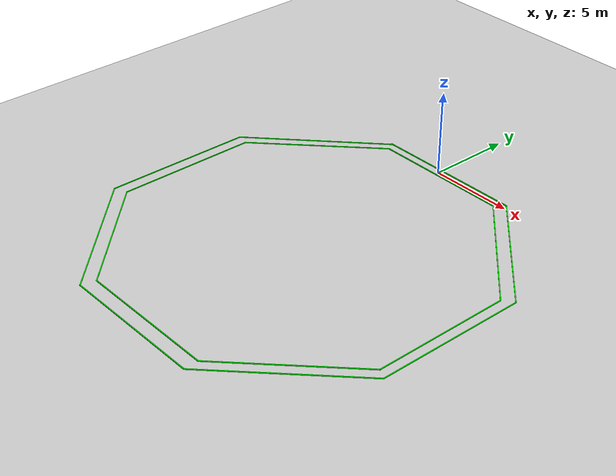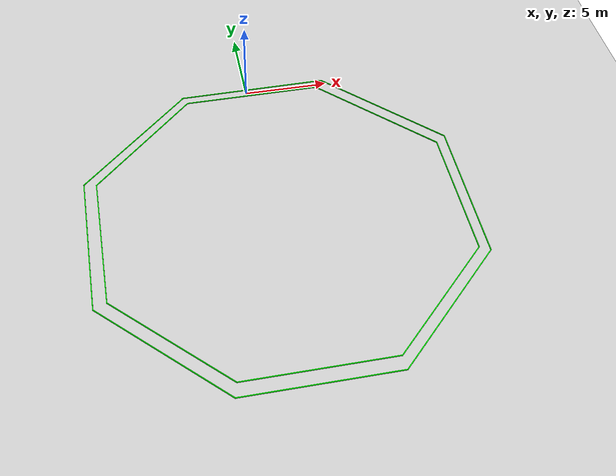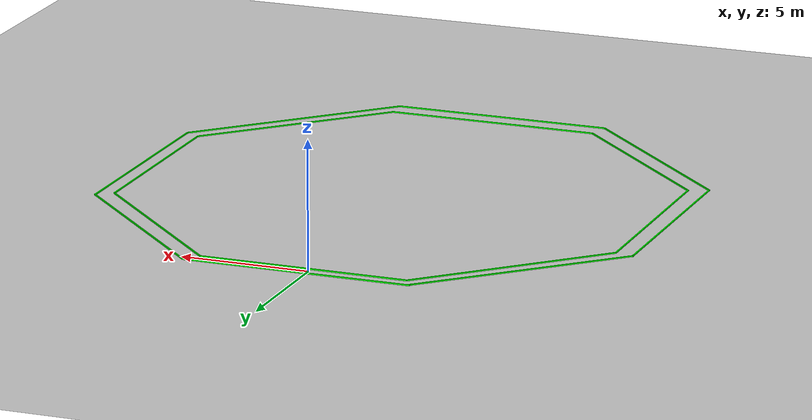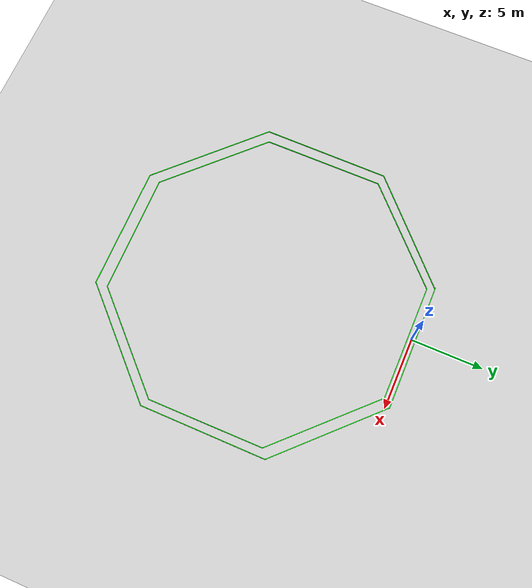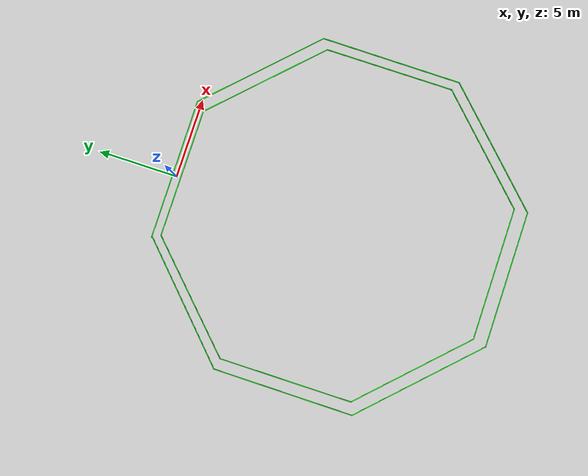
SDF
<sdf version="1.6">
 <world name="default">
  <model name="ground_plane">
   <static>1</static>
   <link name="link">
    <collision name="collision">
     <geometry><plane><normal>0 0 1</normal><size>100 100</size></plane></geometry>
     <surface><friction><ode><mu>100</mu><mu2>50</mu2></ode></friction></surface>
    </collision>
    <visual name="visual">
     <cast_shadows>0</cast_shadows>
     <geometry><plane><normal>0 0 1</normal><size>100 100</size></plane></geometry>
     <material>
      <script><uri>file://media/materials/scripts/gazebo.material</uri><name>Gazebo/Grey</name></script>
     </material>
    </visual>
   </link>
  </model>
  <light name="sun" type="directional">
   <pose>0 0 10 0 -0 0</pose>
   <diffuse>0.8 0.8 0.8 1</diffuse>
   <specular>0.2 0.2 0.2 1</specular>
   <attenuation>
    <range>1000</range>
    <constant>0.9</constant>
    <linear>0.01</linear>
    <quadratic>0.001</quadratic>
   </attenuation>
   <direction>-0.5 0.1 -0.9</direction>
  </light>
  <gravity>0 0 -9.8</gravity>
  <magnetic_field>6e-06 2.3e-05 -4.2e-05</magnetic_field>
  <atmosphere type="adiabatic"/>
  <physics name="default_physics" default="0" type="ode">
   <max_step_size>0.001</max_step_size>
   <real_time_factor>1</real_time_factor>
   <real_time_update_rate>1000</real_time_update_rate>
  </physics>
  <scene><ambient>0.4 0.4 0.4 1</ambient><background>0.7 0.7 0.7 1</background><shadows>1</shadows></scene>
  <spherical_coordinates>
   <surface_model>EARTH_WGS84</surface_model>
   <latitude_deg>0</latitude_deg>
   <longitude_deg>0</longitude_deg>
   <elevation>0</elevation>
   <heading_deg>0</heading_deg>
  </spherical_coordinates>
  <model name="racetrack8">
   <pose>0.303999 -10.4551 0 0 -0 0</pose>
   <link name="Wall_0">
    <collision name="Wall_0_Collision">
     <geometry><box><size>8.15015 0.05 0.05</size></box></geometry>
     <pose>0 0 0.025 0 -0 0</pose>
    </collision>
    <visual name="Wall_0_Visual">
     <pose>0 0 0.025 0 -0 0</pose>
     <geometry><box><size>8.15015 0.05 0.05</size></box></geometry>
     <material>
      <script><uri>file://media/materials/scripts/gazebo.material</uri><name>Gazebo/Grey</name></script>
      <ambient>0 1 0 1</ambient>
     </material>
     <meta><layer>0</layer></meta>
    </visual>
    <pose>0.017001 10.1958 0 0 -0 0</pose>
   </link>
   <link name="Wall_1">
    <collision name="Wall_1_Collision">
     <geometry><box><size>8.65024 0.05 0.05</size></box></geometry>
     <pose>0 0 0.025 0 -0 0</pose>
    </collision>
    <visual name="Wall_1_Visual">
     <pose>0 0 0.025 0 -0 0</pose>
     <geometry><box><size>8.65024 0.05 0.05</size></box></geometry>
     <material>
      <script><uri>file://media/materials/scripts/gazebo.material</uri><name>Gazebo/Grey</name></script>
      <ambient>0 1 0 1</ambient>
     </material>
     <meta><layer>0</layer></meta>
    </visual>
    <pose>7.1075 7.15532 0 0 0 -0.785398</pose>
   </link>
   <link name="Wall_10">
    <collision name="Wall_10_Collision">
     <geometry><box><size>8.7751 0.05 0.05</size></box></geometry>
     <pose>0 0 0.025 0 -0 0</pose>
    </collision>
    <visual name="Wall_10_Visual">
     <pose>0 0 0.025 0 -0 0</pose>
     <geometry><box><size>8.7751 0.05 0.05</size></box></geometry>
     <material>
      <script><uri>file://media/materials/scripts/gazebo.material</uri><name>Gazebo/Grey</name></script>
      <ambient>0 1 0 1</ambient>
     </material>
     <meta><layer>0</layer></meta>
    </visual>
    <pose>7.65868 7.63006 0 0 0 -0.782628</pose>
   </link>
   <link name="Wall_11">
    <collision name="Wall_11_Collision">
     <geometry><box><size>8.90005 0.05 0.05</size></box></geometry>
     <pose>0 0 0.025 0 -0 0</pose>
    </collision>
    <visual name="Wall_11_Visual">
     <pose>0 0 0.025 0 -0 0</pose>
     <geometry><box><size>8.90005 0.05 0.05</size></box></geometry>
     <material>
      <script><uri>file://media/materials/scripts/gazebo.material</uri><name>Gazebo/Grey</name></script>
      <ambient>0 1 0 1</ambient>
     </material>
     <meta><layer>0</layer></meta>
    </visual>
    <pose>10.7345 0.128824 0 0 0 -1.57475</pose>
   </link>
   <link name="Wall_12">
    <collision name="Wall_12_Collision">
     <geometry><box><size>9.14985 0.05 0.05</size></box></geometry>
     <pose>0 0 0.025 0 -0 0</pose>
    </collision>
    <visual name="Wall_12_Visual">
     <pose>0 0 0.025 0 -0 0</pose>
     <geometry><box><size>9.14985 0.05 0.05</size></box></geometry>
     <material>
      <script><uri>file://media/materials/scripts/gazebo.material</uri><name>Gazebo/Grey</name></script>
      <ambient>0 1 0 1</ambient>
     </material>
     <meta><layer>0</layer></meta>
    </visual>
    <pose>7.5 -7.51368 0 0 0 -2.35612</pose>
   </link>
   <link name="Wall_13">
    <collision name="Wall_13_Collision">
     <geometry><box><size>8.65 0.05 0.05</size></box></geometry>
     <pose>0 0 0.025 0 -0 0</pose>
    </collision>
    <visual name="Wall_13_Visual">
     <pose>0 0 0.025 0 -0 0</pose>
     <geometry><box><size>8.65 0.05 0.05</size></box></geometry>
     <material>
      <script><uri>file://media/materials/scripts/gazebo.material</uri><name>Gazebo/Grey</name></script>
      <ambient>0 1 0 1</ambient>
     </material>
     <meta><layer>0</layer></meta>
    </visual>
    <pose>-0.016999 -10.7312 0 0 -0 3.14159</pose>
   </link>
   <link name="Wall_14">
    <collision name="Wall_14_Collision">
     <geometry><box><size>9.15046 0.05 0.05</size></box></geometry>
     <pose>0 0 0.025 0 -0 0</pose>
    </collision>
    <visual name="Wall_14_Visual">
     <pose>0 0 0.025 0 -0 0</pose>
     <geometry><box><size>9.15046 0.05 0.05</size></box></geometry>
     <material>
      <script><uri>file://media/materials/scripts/gazebo.material</uri><name>Gazebo/Grey</name></script>
      <ambient>0 1 0 1</ambient>
     </material>
     <meta><layer>0</layer></meta>
    </visual>
    <pose>-7.5345 -7.51368 0 0 -0 2.35619</pose>
   </link>
   <link name="Wall_15">
    <collision name="Wall_15_Collision">
     <geometry><box><size>8.86507 0.05 0.05</size></box></geometry>
     <pose>0 0 0.025 0 -0 0</pose>
    </collision>
    <visual name="Wall_15_Visual">
     <pose>0 0 0.025 0 -0 0</pose>
     <geometry><box><size>8.86507 0.05 0.05</size></box></geometry>
     <material>
      <script><uri>file://media/materials/scripts/gazebo.material</uri><name>Gazebo/Grey</name></script>
      <ambient>0 1 0 1</ambient>
     </material>
     <meta><layer>0</layer></meta>
    </visual>
    <pose>-10.7345 0.111324 0 0 -0 1.56683</pose>
   </link>
   <link name="Wall_16">
    <collision name="Wall_16_Collision">
     <geometry><box><size>8.95101 0.05 0.05</size></box></geometry>
     <pose>0 0 0.025 0 -0 0</pose>
    </collision>
    <visual name="Wall_16_Visual">
     <pose>0 0 0.025 0 -0 0</pose>
     <geometry><box><size>8.95101 0.05 0.05</size></box></geometry>
     <material>
      <script><uri>file://media/materials/scripts/gazebo.material</uri><name>Gazebo/Grey</name></script>
      <ambient>0 1 0 1</ambient>
     </material>
     <meta><layer>0</layer></meta>
    </visual>
    <pose>-7.50082 7.59506 0 0 -0 0.763161</pose>
   </link>
   <link name="Wall_2">
    <collision name="Wall_2_Collision">
     <geometry><box><size>8.15031 0.05 0.05</size></box></geometry>
     <pose>0 0 0.025 0 -0 0</pose>
    </collision>
    <visual name="Wall_2_Visual">
     <pose>0 0 0.025 0 -0 0</pose>
     <geometry><box><size>8.15031 0.05 0.05</size></box></geometry>
     <material>
      <script><uri>file://media/materials/scripts/gazebo.material</uri><name>Gazebo/Grey</name></script>
      <ambient>0 1 0 1</ambient>
     </material>
     <meta><layer>0</layer></meta>
    </visual>
    <pose>10.148 0.064824 0 0 0 -1.5708</pose>
   </link>
   <link name="Wall_3">
    <collision name="Wall_3_Collision">
     <geometry><box><size>8.40003 0.05 0.05</size></box></geometry>
     <pose>0 0 0.025 0 -0 0</pose>
    </collision>
    <visual name="Wall_3_Visual">
     <pose>0 0 0.025 0 -0 0</pose>
     <geometry><box><size>8.40003 0.05 0.05</size></box></geometry>
     <material>
      <script><uri>file://media/materials/scripts/gazebo.material</uri><name>Gazebo/Grey</name></script>
      <ambient>0 1 0 1</ambient>
     </material>
     <meta><layer>0</layer></meta>
    </visual>
    <pose>7.196 -6.93768 0 0 0 -2.35611</pose>
   </link>
   <link name="Wall_4">
    <collision name="Wall_4_Collision">
     <geometry><box><size>8.40008 0.05 0.05</size></box></geometry>
     <pose>0 0 0.025 0 -0 0</pose>
    </collision>
    <visual name="Wall_4_Visual">
     <pose>0 0 0.025 0 -0 0</pose>
     <geometry><box><size>8.40008 0.05 0.05</size></box></geometry>
     <material>
      <script><uri>file://media/materials/scripts/gazebo.material</uri><name>Gazebo/Grey</name></script>
      <ambient>0 1 0 1</ambient>
     </material>
     <meta><layer>0</layer></meta>
    </visual>
    <pose>0.069001 -9.89018 0 0 -0 3.14159</pose>
   </link>
   <link name="Wall_5">
    <collision name="Wall_5_Collision">
     <geometry><box><size>8.4003 0.05 0.05</size></box></geometry>
     <pose>0 0 0.025 0 -0 0</pose>
    </collision>
    <visual name="Wall_5_Visual">
     <pose>0 0 0.025 0 -0 0</pose>
     <geometry><box><size>8.4003 0.05 0.05</size></box></geometry>
     <material>
      <script><uri>file://media/materials/scripts/gazebo.material</uri><name>Gazebo/Grey</name></script>
      <ambient>0 1 0 1</ambient>
     </material>
     <meta><layer>0</layer></meta>
    </visual>
    <pose>-7.058 -6.93768 0 0 -0 2.35611</pose>
   </link>
   <link name="Wall_6">
    <collision name="Wall_6_Collision">
     <geometry><box><size>8.39969 0.05 0.05</size></box></geometry>
     <pose>0 0 0.025 0 -0 0</pose>
    </collision>
    <visual name="Wall_6_Visual">
     <pose>0 0 0.025 0 -0 0</pose>
     <geometry><box><size>8.39969 0.05 0.05</size></box></geometry>
     <material>
      <script><uri>file://media/materials/scripts/gazebo.material</uri><name>Gazebo/Grey</name></script>
      <ambient>0 1 0 1</ambient>
     </material>
     <meta><layer>0</layer></meta>
    </visual>
    <pose>-10.01 0.189824 0 0 -0 1.5708</pose>
   </link>
   <link name="Wall_7">
    <collision name="Wall_7_Collision">
     <geometry><box><size>8.40015 0.05 0.05</size></box></geometry>
     <pose>0 0 0.025 0 -0 0</pose>
    </collision>
    <visual name="Wall_7_Visual">
     <pose>0 0 0.025 0 -0 0</pose>
     <geometry><box><size>8.40015 0.05 0.05</size></box></geometry>
     <material>
      <script><uri>file://media/materials/scripts/gazebo.material</uri><name>Gazebo/Grey</name></script>
      <ambient>0 1 0 1</ambient>
     </material>
     <meta><layer>0</layer></meta>
    </visual>
    <pose>-7.0215 7.28032 0 0 -0 0.773034</pose>
   </link>
   <link name="Wall_9">
    <collision name="Wall_9_Collision">
     <geometry><box><size>8.90007 0.05 0.05</size></box></geometry>
     <pose>0 0 0.025 0 -0 0</pose>
    </collision>
    <visual name="Wall_9_Visual">
     <pose>0 0 0.025 0 -0 0</pose>
     <geometry><box><size>8.90007 0.05 0.05</size></box></geometry>
     <material>
      <script><uri>file://media/materials/scripts/gazebo.material</uri><name>Gazebo/Grey</name></script>
      <ambient>0 1 0 1</ambient>
     </material>
     <meta><layer>0</layer></meta>
    </visual>
    <pose>0.105179 10.724 0 0 -0 0.003955</pose>
   </link>
   <static>1</static>
  </model>
 </world>
</sdf>
